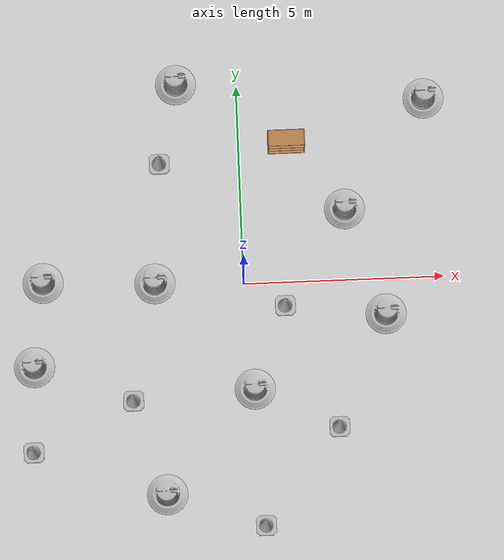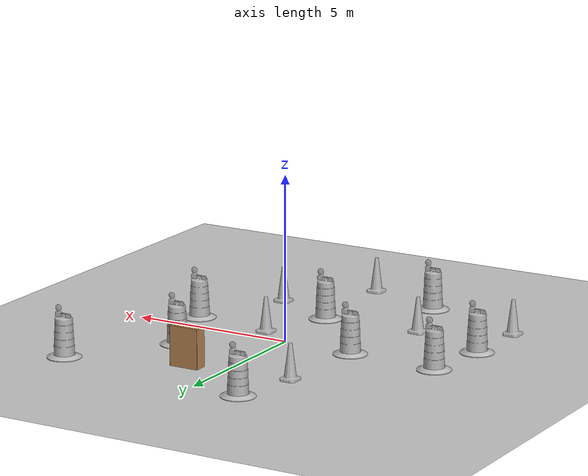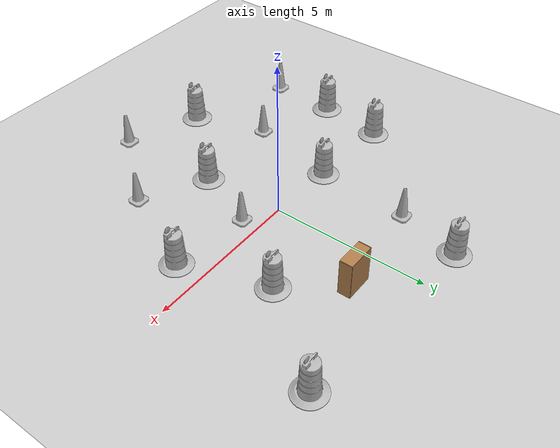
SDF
<sdf version="1.7">
 <world name="default">
  <light name="sun" type="directional">
   <pose>0 0 10 0 -0 0</pose>
   <diffuse>0.8 0.8 0.8 1</diffuse>
   <specular>0.2 0.2 0.2 1</specular>
   <attenuation>
    <range>1000</range>
    <constant>0.9</constant>
    <linear>0.01</linear>
    <quadratic>0.001</quadratic>
   </attenuation>
   <direction>-0.5 0.1 -0.9</direction>
   <spot><inner_angle>0</inner_angle><outer_angle>0</outer_angle><falloff>0</falloff></spot>
  </light>
  <model name="ground_plane">
   <static>1</static>
   <link name="link">
    <collision name="collision">
     <geometry><plane><normal>0 0 1</normal><size>100 100</size></plane></geometry>
     <surface><friction><ode><mu>100</mu><mu2>50</mu2></ode></friction></surface>
    </collision>
    <visual name="visual">
     <cast_shadows>0</cast_shadows>
     <geometry><plane><normal>0 0 1</normal><size>100 100</size></plane></geometry>
     <material>
      <script><uri>file://media/materials/scripts/gazebo.material</uri><name>Gazebo/Grey</name></script>
     </material>
    </visual>
   </link>
  </model>
  <gravity>0 0 -9.8</gravity>
  <magnetic_field>6e-06 2.3e-05 -4.2e-05</magnetic_field>
  <atmosphere type="adiabatic"/>
  <physics type="ode">
   <max_step_size>0.001</max_step_size>
   <real_time_factor>1</real_time_factor>
   <real_time_update_rate>1000</real_time_update_rate>
  </physics>
  <scene><ambient>0.4 0.4 0.4 1</ambient><background>0.7 0.7 0.7 1</background><shadows>1</shadows></scene>
  <audio><device>default</device></audio>
  <spherical_coordinates>
   <surface_model>EARTH_WGS84</surface_model>
   <latitude_deg>0</latitude_deg>
   <longitude_deg>0</longitude_deg>
   <elevation>0</elevation>
   <heading_deg>0</heading_deg>
  </spherical_coordinates>
  <model name="Construction Barrel">
   <link name="link">
    <inertial>
     <pose>0 0 0.4 0 -0 0</pose>
     <mass>500</mass>
     <inertia><ixx>51.2096</ixx><iyy>51.2096</iyy><izz>25</izz><ixy>0</ixy><ixz>0</ixz><iyz>0</iyz></inertia>
    </inertial>
    <collision name="collision">
     <geometry><mesh><uri>model://construction_barrel/meshes/construction_barrel.dae</uri></mesh></geometry>
    </collision>
    <visual name="visual">
     <geometry><mesh><uri>model://construction_barrel/meshes/construction_barrel.dae</uri></mesh></geometry>
    </visual>
   </link>
   <pose>-2.23066 0.093723 0 0 0 -2.5e-05</pose>
  </model>
  <model name="Construction Cone">
   <link name="link">
    <collision name="collision">
     <geometry>
      <mesh><scale>10 10 10</scale><uri>model://construction_cone/meshes/construction_cone.dae</uri></mesh>
     </geometry>
    </collision>
    <visual name="visual">
     <geometry>
      <mesh><scale>10 10 10</scale><uri>model://construction_cone/meshes/construction_cone.dae</uri></mesh>
     </geometry>
    </visual>
    <inertial>
     <inertia><ixx>1</ixx><ixy>0</ixy><ixz>0</ixz><iyy>1</iyy><iyz>0</iyz><izz>1</izz></inertia>
     <mass>1</mass>
    </inertial>
   </link>
   <pose>-2.00651 3.10891 -0 0 -0 0</pose>
  </model>
  <model name="Construction Cone_0">
   <link name="link">
    <collision name="collision">
     <geometry>
      <mesh><scale>10 10 10</scale><uri>model://construction_cone/meshes/construction_cone.dae</uri></mesh>
     </geometry>
    </collision>
    <visual name="visual">
     <geometry>
      <mesh><scale>10 10 10</scale><uri>model://construction_cone/meshes/construction_cone.dae</uri></mesh>
     </geometry>
    </visual>
    <inertial>
     <inertia><ixx>1</ixx><ixy>0</ixy><ixz>0</ixz><iyy>1</iyy><iyz>0</iyz><izz>1</izz></inertia>
     <mass>1</mass>
    </inertial>
   </link>
   <pose>-2.86485 -2.837 -0 0 -0 0</pose>
  </model>
  <model name="Construction Barrel_0">
   <link name="link">
    <inertial>
     <pose>0 0 0.4 0 -0 0</pose>
     <mass>500</mass>
     <inertia><ixx>51.2096</ixx><iyy>51.2096</iyy><izz>25</izz><ixy>0</ixy><ixz>0</ixz><iyz>0</iyz></inertia>
    </inertial>
    <collision name="collision">
     <geometry><mesh><uri>model://construction_barrel/meshes/construction_barrel.dae</uri></mesh></geometry>
    </collision>
    <visual name="visual">
     <geometry><mesh><uri>model://construction_barrel/meshes/construction_barrel.dae</uri></mesh></geometry>
    </visual>
   </link>
   <pose>0.169229 -2.655 -0 0 0 -3e-05</pose>
  </model>
  <model name="Construction Barrel_1">
   <link name="link">
    <inertial>
     <pose>0 0 0.4 0 -0 0</pose>
     <mass>500</mass>
     <inertia><ixx>51.2096</ixx><iyy>51.2096</iyy><izz>25</izz><ixy>0</ixy><ixz>0</ixz><iyz>0</iyz></inertia>
    </inertial>
    <collision name="collision">
     <geometry><mesh><uri>model://construction_barrel/meshes/construction_barrel.dae</uri></mesh></geometry>
    </collision>
    <visual name="visual">
     <geometry><mesh><uri>model://construction_barrel/meshes/construction_barrel.dae</uri></mesh></geometry>
    </visual>
   </link>
   <pose>2.5882 1.79437 -0 0 0 -2.5e-05</pose>
  </model>
  <model name="Construction Barrel_2">
   <link name="link">
    <inertial>
     <pose>0 0 0.4 0 -0 0</pose>
     <mass>500</mass>
     <inertia><ixx>51.2096</ixx><iyy>51.2096</iyy><izz>25</izz><ixy>0</ixy><ixz>0</ixz><iyz>0</iyz></inertia>
    </inertial>
    <collision name="collision">
     <geometry><mesh><uri>model://construction_barrel/meshes/construction_barrel.dae</uri></mesh></geometry>
    </collision>
    <visual name="visual">
     <geometry><mesh><uri>model://construction_barrel/meshes/construction_barrel.dae</uri></mesh></geometry>
    </visual>
   </link>
   <pose>3.512 -0.893625 -0 0 0 -2.4e-05</pose>
  </model>
  <model name="Construction Barrel_3">
   <link name="link">
    <inertial>
     <pose>0 0 0.4 0 -0 0</pose>
     <mass>500</mass>
     <inertia><ixx>51.2096</ixx><iyy>51.2096</iyy><izz>25</izz><ixy>0</ixy><ixz>0</ixz><iyz>0</iyz></inertia>
    </inertial>
    <collision name="collision">
     <geometry><mesh><uri>model://construction_barrel/meshes/construction_barrel.dae</uri></mesh></geometry>
    </collision>
    <visual name="visual">
     <geometry><mesh><uri>model://construction_barrel/meshes/construction_barrel.dae</uri></mesh></geometry>
    </visual>
   </link>
   <pose>-5.02235 0.216672 0 0 0 -2.5e-05</pose>
  </model>
  <model name="bookshelf">
   <static>1</static>
   <link name="link">
    <inertial><mass>1</mass></inertial>
    <collision name="back">
     <pose>0 0.005 0.6 0 -0 0</pose>
     <geometry><box><size>0.9 0.01 1.2</size></box></geometry>
    </collision>
    <visual name="visual1">
     <pose>0 0.005 0.6 0 -0 0</pose>
     <geometry><box><size>0.9 0.01 1.2</size></box></geometry>
     <material>
      <script><uri>file://media/materials/scripts/gazebo.material</uri><name>Gazebo/Wood</name></script>
     </material>
    </visual>
    <collision name="left_side">
     <pose>0.45 -0.195 0.6 0 -0 0</pose>
     <geometry><box><size>0.02 0.4 1.2</size></box></geometry>
    </collision>
    <visual name="visual2">
     <pose>0.45 -0.195 0.6 0 -0 0</pose>
     <geometry><box><size>0.02 0.4 1.2</size></box></geometry>
     <material>
      <script><uri>file://media/materials/scripts/gazebo.material</uri><name>Gazebo/Wood</name></script>
     </material>
    </visual>
    <collision name="right_side">
     <pose>-0.45 -0.195 0.6 0 -0 0</pose>
     <geometry><box><size>0.02 0.4 1.2</size></box></geometry>
    </collision>
    <visual name="visual3">
     <pose>-0.45 -0.195 0.6 0 -0 0</pose>
     <geometry><box><size>0.02 0.4 1.2</size></box></geometry>
     <material>
      <script><uri>file://media/materials/scripts/gazebo.material</uri><name>Gazebo/Wood</name></script>
     </material>
    </visual>
    <collision name="bottom">
     <pose>0 -0.195 0.03 0 -0 0</pose>
     <geometry><box><size>0.88 0.4 0.06</size></box></geometry>
    </collision>
    <visual name="visual4">
     <pose>0 -0.195 0.03 0 -0 0</pose>
     <geometry><box><size>0.88 0.4 0.06</size></box></geometry>
     <material>
      <script><uri>file://media/materials/scripts/gazebo.material</uri><name>Gazebo/Wood</name></script>
     </material>
    </visual>
    <collision name="top">
     <pose>0 -0.195 1.19 0 -0 0</pose>
     <geometry><box><size>0.88 0.4 0.02</size></box></geometry>
    </collision>
    <visual name="visual5">
     <pose>0 -0.195 1.19 0 -0 0</pose>
     <geometry><box><size>0.88 0.4 0.02</size></box></geometry>
     <material>
      <script><uri>file://media/materials/scripts/gazebo.material</uri><name>Gazebo/Wood</name></script>
     </material>
    </visual>
    <collision name="low_shelf">
     <pose>0 -0.195 0.43 0 -0 0</pose>
     <geometry><box><size>0.88 0.4 0.02</size></box></geometry>
    </collision>
    <visual name="visual6">
     <pose>0 -0.195 0.43 0 -0 0</pose>
     <geometry><box><size>0.88 0.4 0.02</size></box></geometry>
     <material>
      <script><uri>file://media/materials/scripts/gazebo.material</uri><name>Gazebo/Wood</name></script>
     </material>
    </visual>
    <collision name="high_shelf">
     <pose>0 -0.195 0.8 0 -0 0</pose>
     <geometry><box><size>0.88 0.4 0.02</size></box></geometry>
    </collision>
    <visual name="visual7">
     <pose>0 -0.195 0.8 0 -0 0</pose>
     <geometry><box><size>0.88 0.4 0.02</size></box></geometry>
     <material>
      <script><uri>file://media/materials/scripts/gazebo.material</uri><name>Gazebo/Wood</name></script>
     </material>
    </visual>
   </link>
   <pose>1.18769 3.65572 0 0 -0 0</pose>
  </model>
  <model name="Construction Cone_2">
   <link name="link">
    <collision name="collision">
     <geometry>
      <mesh><scale>10 10 10</scale><uri>model://construction_cone/meshes/construction_cone.dae</uri></mesh>
     </geometry>
    </collision>
    <visual name="visual">
     <geometry>
      <mesh><scale>10 10 10</scale><uri>model://construction_cone/meshes/construction_cone.dae</uri></mesh>
     </geometry>
    </visual>
    <inertial>
     <inertia><ixx>1</ixx><ixy>0</ixy><ixz>0</ixz><iyy>1</iyy><iyz>0</iyz><izz>1</izz></inertia>
     <mass>1</mass>
    </inertial>
   </link>
   <pose>1.00769 -0.589925 -0 0 -0 0</pose>
  </model>
  <model name="Construction Cone_3">
   <link name="link">
    <collision name="collision">
     <geometry>
      <mesh><scale>10 10 10</scale><uri>model://construction_cone/meshes/construction_cone.dae</uri></mesh>
     </geometry>
    </collision>
    <visual name="visual">
     <geometry>
      <mesh><scale>10 10 10</scale><uri>model://construction_cone/meshes/construction_cone.dae</uri></mesh>
     </geometry>
    </visual>
    <inertial>
     <inertia><ixx>1</ixx><ixy>0</ixy><ixz>0</ixz><iyy>1</iyy><iyz>0</iyz><izz>1</izz></inertia>
     <mass>1</mass>
    </inertial>
   </link>
   <pose>-5.39008 -4.02757 -0 0 -0 0</pose>
  </model>
  <model name="Construction Barrel_4">
   <link name="link">
    <inertial>
     <pose>0 0 0.4 0 -0 0</pose>
     <mass>500</mass>
     <inertia><ixx>51.2096</ixx><iyy>51.2096</iyy><izz>25</izz><ixy>0</ixy><ixz>0</ixz><iyz>0</iyz></inertia>
    </inertial>
    <collision name="collision">
     <geometry><mesh><uri>model://construction_barrel/meshes/construction_barrel.dae</uri></mesh></geometry>
    </collision>
    <visual name="visual">
     <geometry><mesh><uri>model://construction_barrel/meshes/construction_barrel.dae</uri></mesh></geometry>
    </visual>
   </link>
   <pose>-5.30575 -1.89132 0 1e-06 1e-06 -2.1e-05</pose>
  </model>
  <model name="Construction Barrel_5">
   <link name="link">
    <inertial>
     <pose>0 0 0.4 0 -0 0</pose>
     <mass>500</mass>
     <inertia><ixx>51.2096</ixx><iyy>51.2096</iyy><izz>25</izz><ixy>0</ixy><ixz>0</ixz><iyz>0</iyz></inertia>
    </inertial>
    <collision name="collision">
     <geometry><mesh><uri>model://construction_barrel/meshes/construction_barrel.dae</uri></mesh></geometry>
    </collision>
    <visual name="visual">
     <geometry><mesh><uri>model://construction_barrel/meshes/construction_barrel.dae</uri></mesh></geometry>
    </visual>
   </link>
   <pose>-2.111 -5.20003 0 0 0 -1.9e-05</pose>
  </model>
  <model name="Construction Barrel_6">
   <link name="link">
    <inertial>
     <pose>0 0 0.4 0 -0 0</pose>
     <mass>500</mass>
     <inertia><ixx>51.2096</ixx><iyy>51.2096</iyy><izz>25</izz><ixy>0</ixy><ixz>0</ixz><iyz>0</iyz></inertia>
    </inertial>
    <collision name="collision">
     <geometry><mesh><uri>model://construction_barrel/meshes/construction_barrel.dae</uri></mesh></geometry>
    </collision>
    <visual name="visual">
     <geometry><mesh><uri>model://construction_barrel/meshes/construction_barrel.dae</uri></mesh></geometry>
    </visual>
   </link>
   <pose>-1.52147 5.11385 -2e-06 7e-06 -4e-06 -1.5e-05</pose>
  </model>
  <model name="Construction Barrel_7">
   <link name="link">
    <inertial>
     <pose>0 0 0.4 0 -0 0</pose>
     <mass>500</mass>
     <inertia><ixx>51.2096</ixx><iyy>51.2096</iyy><izz>25</izz><ixy>0</ixy><ixz>0</ixz><iyz>0</iyz></inertia>
    </inertial>
    <collision name="collision">
     <geometry><mesh><uri>model://construction_barrel/meshes/construction_barrel.dae</uri></mesh></geometry>
    </collision>
    <visual name="visual">
     <geometry><mesh><uri>model://construction_barrel/meshes/construction_barrel.dae</uri></mesh></geometry>
    </visual>
   </link>
   <pose>4.68367 4.5224 0 0 0 -1.1e-05</pose>
  </model>
  <model name="Construction Cone_1">
   <link name="link">
    <collision name="collision">
     <geometry>
      <mesh><scale>10 10 10</scale><uri>model://construction_cone/meshes/construction_cone.dae</uri></mesh>
     </geometry>
    </collision>
    <visual name="visual">
     <geometry>
      <mesh><scale>10 10 10</scale><uri>model://construction_cone/meshes/construction_cone.dae</uri></mesh>
     </geometry>
    </visual>
    <inertial>
     <inertia><ixx>1</ixx><ixy>0</ixy><ixz>0</ixz><iyy>1</iyy><iyz>0</iyz><izz>1</izz></inertia>
     <mass>1</mass>
    </inertial>
   </link>
   <pose>2.23561 -3.67962 -0 0 -0 0</pose>
  </model>
  <model name="Construction Cone_4">
   <link name="link">
    <collision name="collision">
     <geometry>
      <mesh><scale>10 10 10</scale><uri>model://construction_cone/meshes/construction_cone.dae</uri></mesh>
     </geometry>
    </collision>
    <visual name="visual">
     <geometry>
      <mesh><scale>10 10 10</scale><uri>model://construction_cone/meshes/construction_cone.dae</uri></mesh>
     </geometry>
    </visual>
    <inertial>
     <inertia><ixx>1</ixx><ixy>0</ixy><ixz>0</ixz><iyy>1</iyy><iyz>0</iyz><izz>1</izz></inertia>
     <mass>1</mass>
    </inertial>
   </link>
   <pose>0.311524 -6.06772 -0 0 -1e-06 0</pose>
  </model>
 </world>
</sdf>
